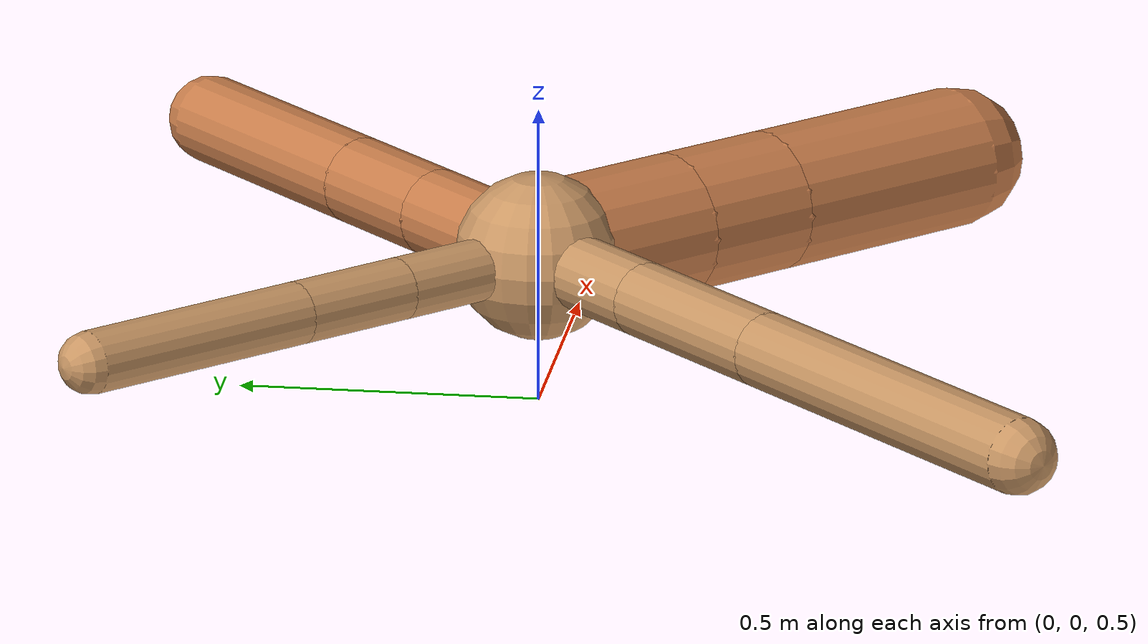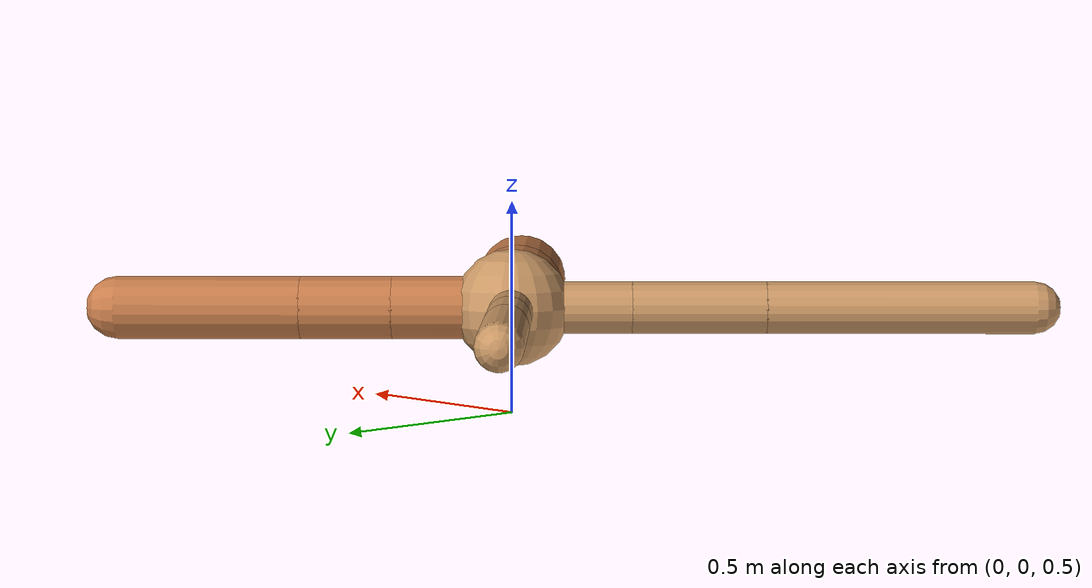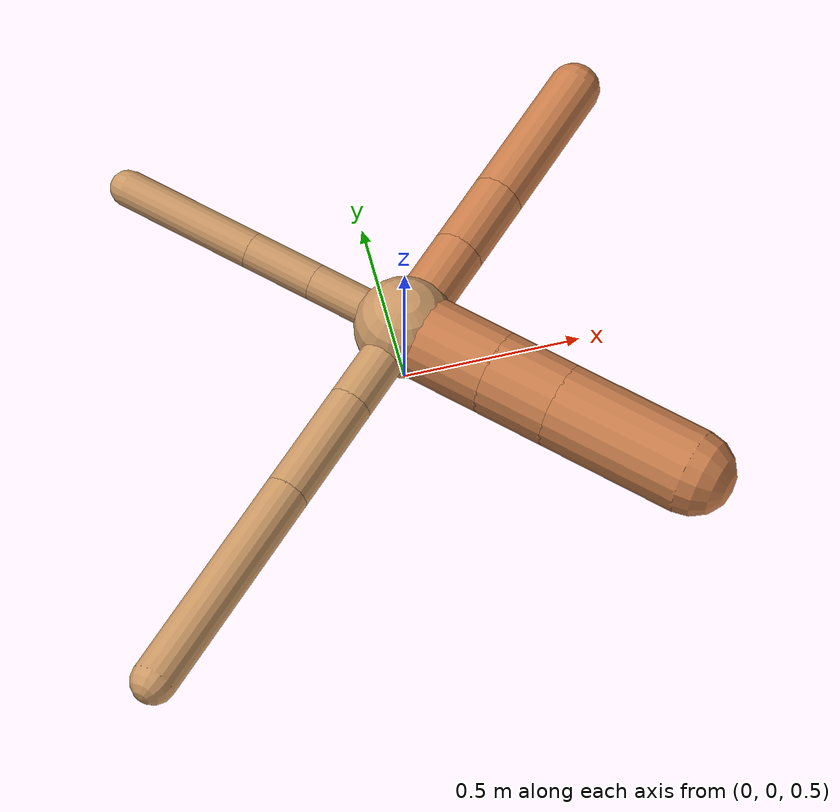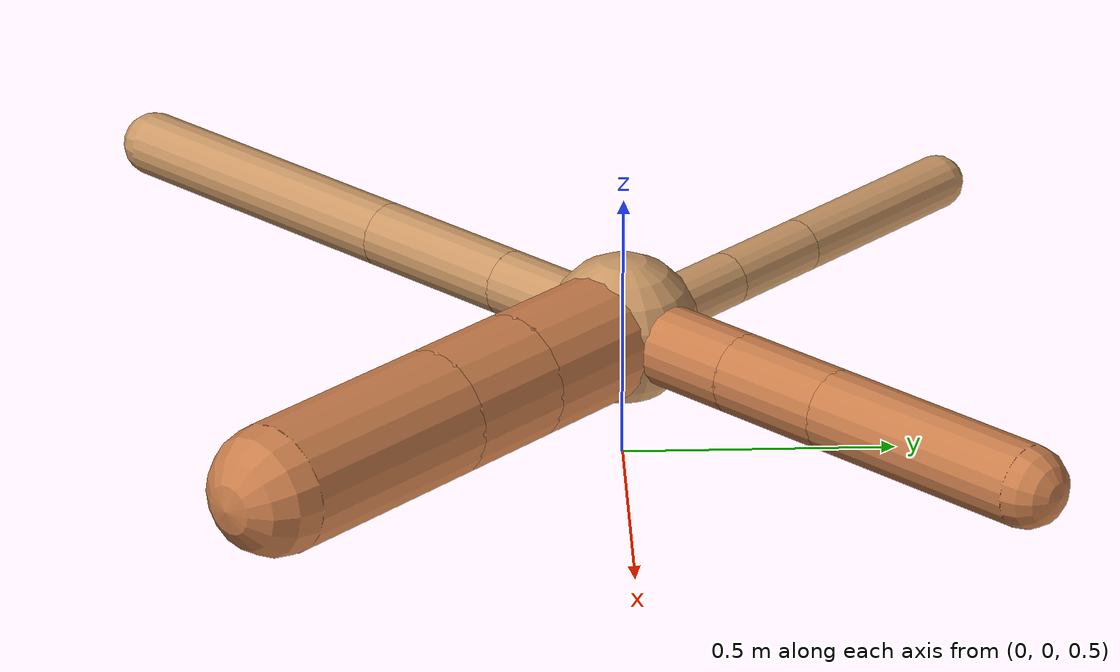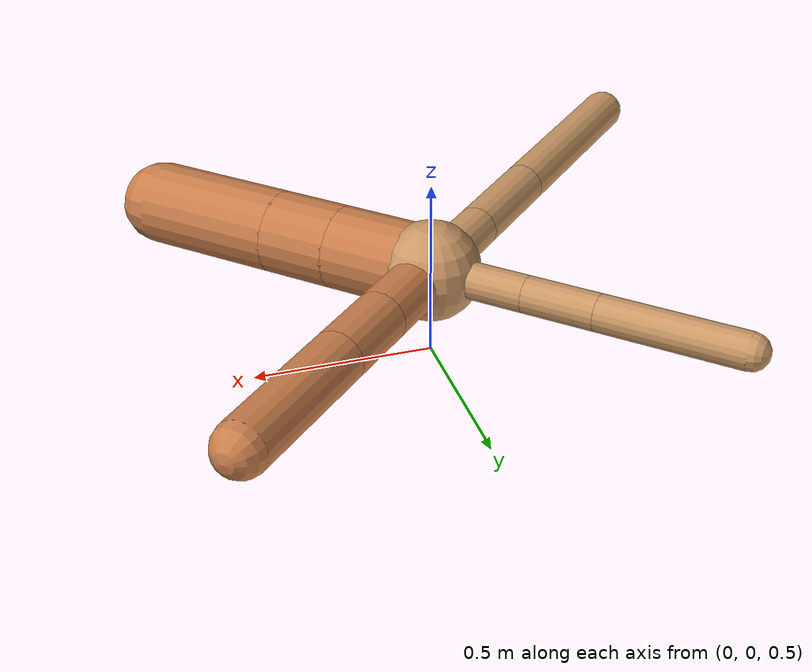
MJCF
<?xml version="1.0" ?>
<mujoco model="ant">

	<compiler angle="degree" coordinate="local" inertiafromgeom="true"/>

	<option integrator="RK4" timestep="0.01"/>

	<custom>

		<numeric data="0.0 0.0 0.55 1.0 0.0 0.0 0.0 0.0 1.0 0.0 -1.0 0.0 -1.0 0.0 1.0" name="init_qpos"/>

	</custom>

	<default>

		<joint armature="1" damping="1" limited="true"/>

		<geom conaffinity="0" condim="3" density="5.0" friction="1.5 0.1 0.1" margin="0.01" rgba="0.8 0.6 0.4 1"/>

	</default>

	<worldbody>

		<body name="torso" pos="0 0 0.75">

			<geom name="torso_geom" pos="0 0 0" size="0.13892923687459133" type="sphere"/>

			<!--joint armature="0" damping="0" limited="false" margin="0.01" name="root" pos="0 0 0" type="free"/-->

			<body name="front_left_leg" pos="0 0 0">

				<geom fromto="0 0 0 0.2 0.2 0" name="aux_1_geom" size="0.07455235424559972" type="capsule" rgba=".8 .5 .3 1"/>

				<body name="aux_1" pos="0.2 0.2 0">

					<joint axis="0 0 1" name="hip_1" pos="0.0 0.0 0.0" range="-40 40" type="hinge"/>

					<geom fromto="0 0 0 0.1528714445689802 0.1528714445689802 0" name="left_leg_geom" size="0.07455235424559972" type="capsule" rgba=".8 .5 .3 1"/>

					<body pos="0.1528714445689802 0.1528714445689802 0" name="front_left_foot">

						<joint axis="-1 1 0" name="ankle_1" pos="0.0 0.0 0.0" range="30 100" type="hinge"/>

						<geom fromto="0 0 0 0.3057428891379604 0.3057428891379604 0" name="left_ankle_geom" size="0.07455235424559972" type="capsule" rgba=".8 .5 .3 1"/>

					</body>

				</body>

			</body>

			<body name="front_right_leg" pos="0 0 0">

				<geom fromto="0 0 0 -0.2 0.2 0" name="aux_2_geom" size="0.05157567519768375" type="capsule"/>

				<body name="aux_2" pos="-0.2 0.2 0">

					<joint axis="0 0 1" name="hip_2" pos="0.0 0.0 0.0" range="-40 40" type="hinge"/>

					<geom fromto="0 0 0 -0.1436546787132679 0.1436546787132679 0" name="right_leg_geom" size="0.05157567519768375" type="capsule"/>

					<body pos="-0.1436546787132679 0.1436546787132679 0" name="front_right_foot">

						<joint axis="1 1 0" name="ankle_2" pos="0.0 0.0 0.0" range="-100 -30" type="hinge"/>

						<geom fromto="0 0 0 -0.2873093574265358 0.2873093574265358 0" name="right_ankle_geom" size="0.05157567519768375" type="capsule"/>

					</body>

				</body>

			</body>

			<body name="left_back_leg" pos="0 0 0">

				<geom fromto="0 0 0 -0.2 -0.2 0" name="aux_3_geom" size="0.06180755265045941" type="capsule"/>

				<body name="aux_3" pos="-0.2 -0.2 0">

					<joint axis="0 0 1" name="hip_3" pos="0.0 0.0 0.0" range="-40 40" type="hinge"/>

					<geom fromto="0 0 0 -0.22363446021545688 -0.22363446021545688 0" name="back_leg_geom" size="0.06180755265045941" type="capsule"/>

					<body pos="-0.22363446021545688 -0.22363446021545688 0" name="left_back_foot">

						<joint axis="-1 1 0" name="ankle_3" pos="0.0 0.0 0.0" range="-100 -30" type="hinge"/>

						<geom fromto="0 0 0 -0.44726892043091376 -0.44726892043091376 0" name="third_ankle_geom" size="0.06180755265045941" type="capsule"/>

					</body>

				</body>

			</body>

			<body name="right_back_leg" pos="0 0 0">

				<geom fromto="0 0 0 0.2 -0.2 0" name="aux_4_geom" size="0.11794593572153594" type="capsule" rgba=".8 .5 .3 1"/>

				<body name="aux_4" pos="0.2 -0.2 0">

					<joint axis="0 0 1" name="hip_4" pos="0.0 0.0 0.0" range="-40 40" type="hinge"/>

					<geom fromto="0 0 0 0.1406319153777957 -0.1406319153777957 0" name="rightback_leg_geom" size="0.11794593572153594" type="capsule" rgba=".8 .5 .3 1"/>

					<body pos="0.1406319153777957 -0.1406319153777957 0" name="right_back_foot">

						<joint axis="1 1 0" name="ankle_4" pos="0.0 0.0 0.0" range="30 100" type="hinge"/>

						<geom fromto="0 0 0 0.2812638307555914 -0.2812638307555914 0" name="fourth_ankle_geom" size="0.11794593572153594" type="capsule" rgba=".8 .5 .3 1"/>

					</body>

				</body>

			</body>

		</body>

	</worldbody>

	<actuator>

		<motor ctrllimited="true" ctrlrange="-1.0 1.0" joint="hip_4" gear="150"/>

		<motor ctrllimited="true" ctrlrange="-1.0 1.0" joint="ankle_4" gear="150"/>

		<motor ctrllimited="true" ctrlrange="-1.0 1.0" joint="hip_1" gear="150"/>

		<motor ctrllimited="true" ctrlrange="-1.0 1.0" joint="ankle_1" gear="150"/>

		<motor ctrllimited="true" ctrlrange="-1.0 1.0" joint="hip_2" gear="150"/>

		<motor ctrllimited="true" ctrlrange="-1.0 1.0" joint="ankle_2" gear="150"/>

		<motor ctrllimited="true" ctrlrange="-1.0 1.0" joint="hip_3" gear="150"/>

		<motor ctrllimited="true" ctrlrange="-1.0 1.0" joint="ankle_3" gear="150"/>

	</actuator>

</mujoco>
